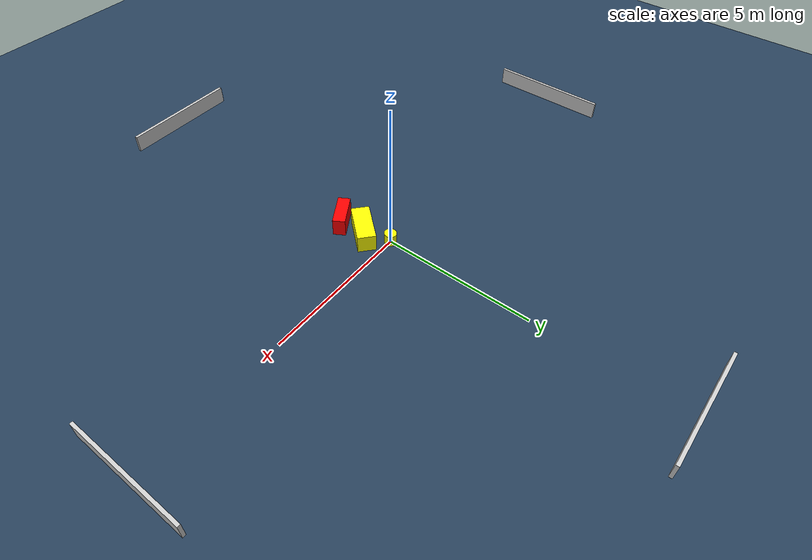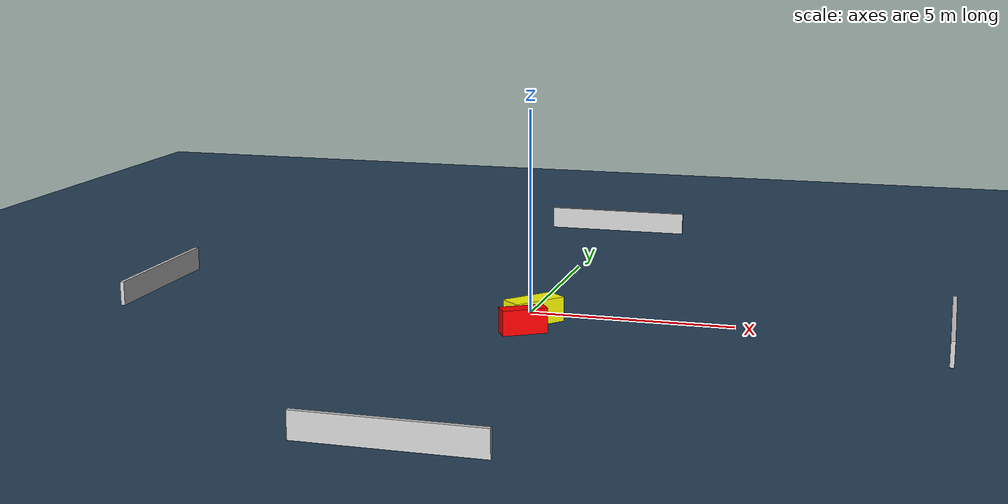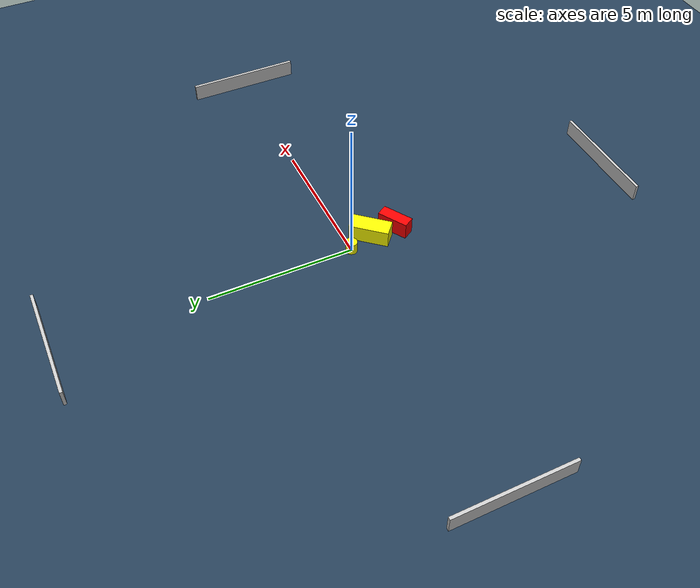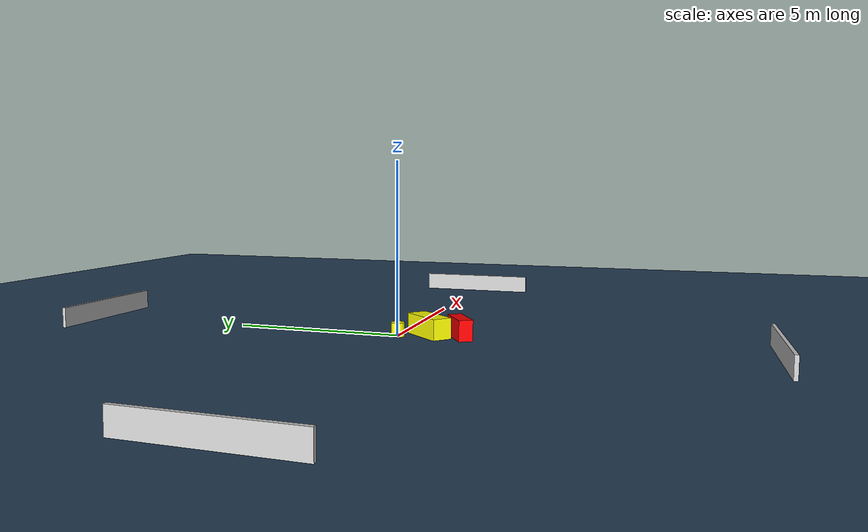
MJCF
<?xml version="1.0" ?>
<mujoco model="generated_environment">
  <option timestep="0.01" integrator="RK4" cone="elliptic"/>
  <default>
    <geom density="1"/>
  </default>
  <asset>
    <texture builtin="gradient" height="3072" name="skybox" rgb1="0.3 0.5 0.7" rgb2="0 0 0" type="skybox" width="512"/>
    <texture builtin="checker" height="300" name="groundplane" rgb1="0.2 0.3 0.4" rgb2="0.1 0.2 0.3" type="2d" width="300"/>
    <material name="groundplane" reflectance="0.2" texrepeat="5 5" texture="groundplane"/>
  </asset>
  <worldbody>
    <light dir="0 0 -1" directional="true" pos="0 0 1.5"/>
    <geom condim="3" friction="0.5 0.005 0.001" material="groundplane" name="floor" pos="0 0 0" size="0 0 0.05" type="plane"/>
    <body name="walls">
      <geom name="wall_1" condim="4" pos="-10.0 0.0 0.3" rgba="0.800000011920929 0.800000011920929 0.800000011920929 1.0" size="0.05 2.0 0.3" type="box"/>
      <geom name="wall_2" condim="4" pos="10.0 0.0 0.3" rgba="0.800000011920929 0.800000011920929 0.800000011920929 1.0" size="0.05 2.0 0.3" type="box"/>
      <geom name="wall_3" condim="4" pos="0.0 -10.0 0.3" rgba="0.800000011920929 0.800000011920929 0.800000011920929 1.0" size="2.0 0.05 0.3" type="box"/>
      <geom name="wall_4" condim="4" pos="0.0 10.0 0.3" rgba="0.800000011920929 0.800000011920929 0.800000011920929 1.0" size="2.0 0.05 0.3" type="box"/>
    </body>
    <body name="robot">
      <joint name="joint_x" type="slide" pos="0 0 0" axis="1 0 0"/>
      <joint name="joint_y" type="slide" pos="0 0 0" axis="0 1 0"/>
      <geom name="robot" type="cylinder" pos="0.0 0.0 0.2" size="0.2 0.2 0.0" mass="5.0" friction="1.0 0.005 0.0001" condim="4" rgba="1.0 1.0 0.0 1.0"/>
    </body>
    <body name="obstacle_1_movable">
      <geom name="obstacle_1_movable" condim="4" pos="0.30377214093523086 -0.8471235661174401 0.3" euler="0 0 48.85351443486853" friction="0.0 0.005 0.001" rgba="1.0 1.0 0.0 1.0" size="0.6781964329487968 0.29585214650928976 0.3" type="box" mass="0.1"/>
      <joint type="free"/>
    </body>
    <body name="obstacle_2_static">
      <geom name="obstacle_2_static" condim="4" pos="0.2917821418513539 -1.7588896169448887 0.3" euler="0 0 301.1980803951671" friction="0.0 0.005 0.001" rgba="1.0 0.0 0.0 1.0" size="0.20384405925466326 0.5420878090464639 0.3" type="box"/>
    </body>
  </worldbody>
  <actuator>
    <motor name="actuator_x" joint="joint_x" gear="1" ctrlrange="-1 1"/>
    <motor name="actuator_y" joint="joint_y" gear="1" ctrlrange="-1 1"/>
  </actuator>
</mujoco>
